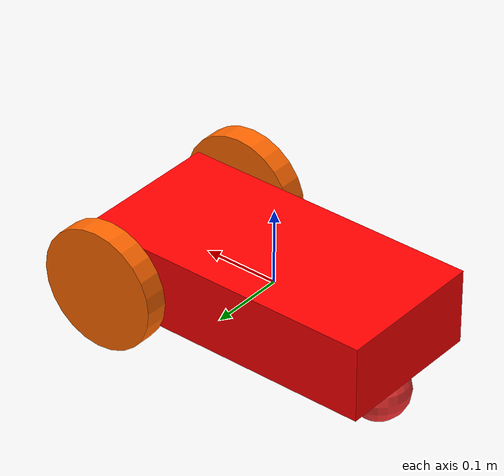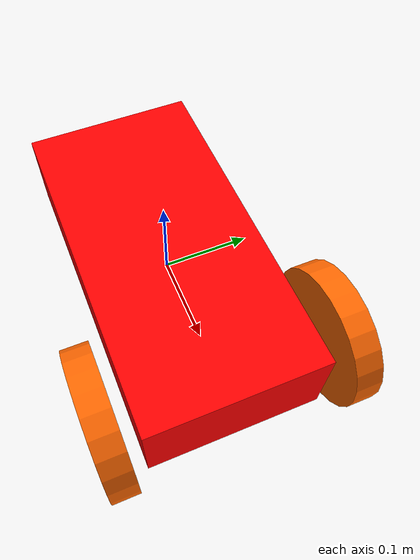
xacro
<robot xmlns:xacro="http://www.ros.org/wiki/xacro" name="cobra">

    <xacro:include filename="$(find differential_robot_description)/urdf/diffrobot.gazebo"/>

<link name="robot_footprint">

</link>
<joint name="robot_footprint" type="fixed">
    <origin xyz="0.0 0.0 0.0" rpy="0.0 0.0 0.0"/>
    <parent link="robot_footprint"/>
    <child link="base_link"/>

</joint>

<link name="base_link"  >
    <inertial>
        <origin xyz="0.0 0.0 0.0" rpy="0.0 0.0 0.0"/>
        <mass value="5.0"/>
        <inertia ixx="0.0" ixy="0.0" ixz="0.0" iyy="0.0" iyz="0.0" izz="0.0"/>
    </inertial>
    <visual name="base_link_visual">
        <origin xyz="0.0 0.0 0.0" rpy="0.0 0.0 0.0"/>
        <geometry>
            <box size="0.4 0.2 0.1"/>
        </geometry>
        <material name="">
            <color rgba="1.0 0.0 0.0 1.0"/>
            <texture filename=""/>
        </material>
    </visual>
    <collision>
        <origin xyz="0.0 0.0 0.0" rpy="0.0 0.0 0.0"/>
        <geometry>
            <box size="0.4 0.2 0.1"/>
        </geometry>
    </collision>
</link>

<link name="left_wheel">
    <inertial>
        <origin xyz="0.0 0.0 0.0" rpy="0.0 0.0 0.0"/>
        <mass value="1.0"/>
        <inertia ixx="0.0" ixy="0.0" ixz="0.0" iyy="0.0" iyz="0.0" izz="0.0"/>
    </inertial>
    <visual name="left_wheel_visual">
        <origin xyz="0.0 0.0 0.0" rpy="0.0 0.0 0.0"/>
        <geometry>
            <cylinder radius="0.08" length="0.03"/>
        </geometry>
        <material name="">
            <color rgba="1.0 0.4 0.0 1.0"/>
            <texture filename=""/>
        </material>
    </visual>
    <collision>
        <origin xyz="0.0 0.0 0.0" rpy="0.0 0.0 0.0"/>
        <geometry>
            <cylinder radius="0.08" length="0.03"/>
        </geometry>
    </collision>
</link>

<joint name="left_wheel_joint" type="continuous">
    <origin xyz="0.15 0.13 0.0" rpy="0.0 1.5705 1.5705"/>
    <parent link="base_link"/>
    <child link="left_wheel"/>
    <axis xyz="0.0 0.0 1.0"/>
    <limit lower="0.0" upper="0.0" effort="0.0" velocity="0.0"/>
</joint>

<link name="right_wheel">
    <inertial>
        <origin xyz="0.0 0.0 0.0" rpy="0.0 0.0 0.0"/>
        <mass value="1.0"/>
        <inertia ixx="0.0" ixy="0.0" ixz="0.0" iyy="0.0" iyz="0.0" izz="0.0"/>
    </inertial>
    <visual name="right_wheel_visual">
        <origin xyz="0.0 0.0 0.0" rpy="0.0 0.0 0.0"/>
        <geometry>
            <cylinder radius="0.08" length="0.03"/>
        </geometry>
        <material name="">
            <color rgba="1.0 0.4 0.0 1.0"/>
            <texture filename=""/>
        </material>
    </visual>
    <collision>
        <origin xyz="0.0 0.0 0.0" rpy="0.0 0.0 0.0"/>
        <geometry>
            <cylinder radius="0.08" length="0.03"/>
        </geometry>
    </collision>
</link>

 <joint name="right_wheel_joint" type="continuous">
    <origin xyz="0.15 -0.13 0.0" rpy="0.0 1.5705 1.5705"/>
    <parent link="base_link"/>
    <child link="right_wheel"/>
    <axis xyz="0.0 0.0 1.0"/>
    <limit lower="0.0" upper="0.0" effort="0.0" velocity="0.0"/>
 </joint>

<link name="front_caster">
    <inertial>
        <origin xyz="0.0 0.0 0.0" rpy="0.0 0.0 0.0"/>
        <mass value="0.1"/>
        <inertia ixx="0.0" ixy="0.0" ixz="0.0" iyy="0.0" iyz="0.0" izz="0.0"/>
    </inertial>
    <visual name="front_caster_visual">
        <origin xyz="0.0 0.0 0.0" rpy="0.0 0.0 0.0"/>
        <geometry>
            <sphere radius="0.0399"/>
        </geometry>
        <material name="">
            <color rgba="1.0 0.2 0.2 1.0"/>
            <texture filename=""/>
        </material>
    </visual>
    <collision>
        <origin xyz="0.0 0.0 0.0" rpy="0.0 0.0 0.0"/>
        <geometry>
            <sphere radius="0.0399"/>
        </geometry>
    </collision>
</link>

<joint name="front_caster_joint" type="fixed">
    <origin xyz="-0.15 -0.01 -0.09" rpy="0.0 0.0 0.0"/>
    <parent link="base_link"/>
    <child link="front_caster"/>
    <axis xyz="0.0 0.0 0.0"/>
    <limit lower="0.0" upper="0.0" effort="0.0" velocity="0.0"/>
</joint>

</robot>
